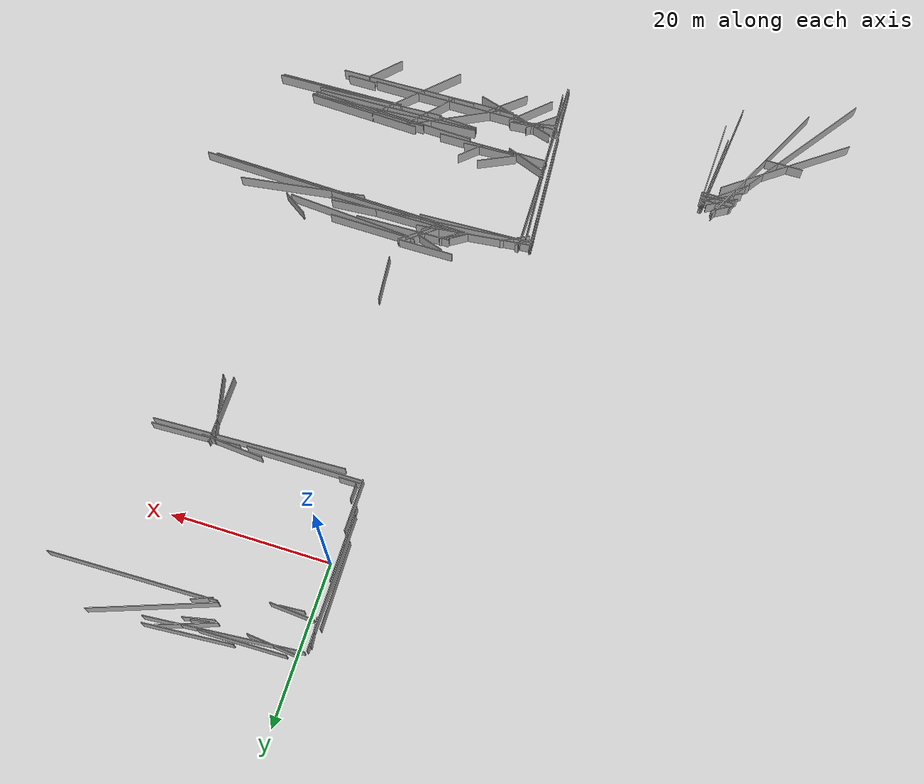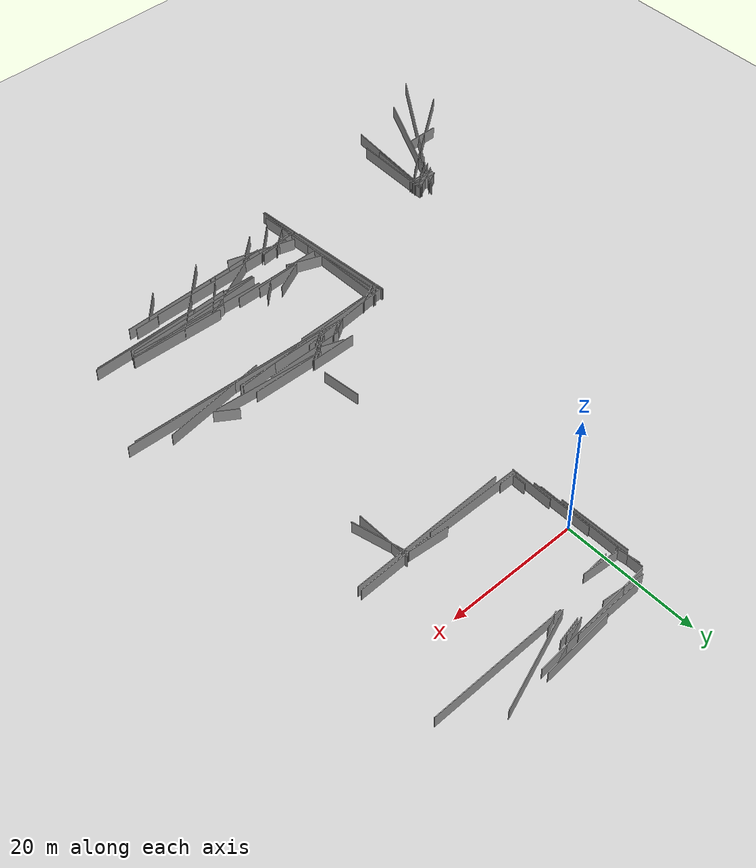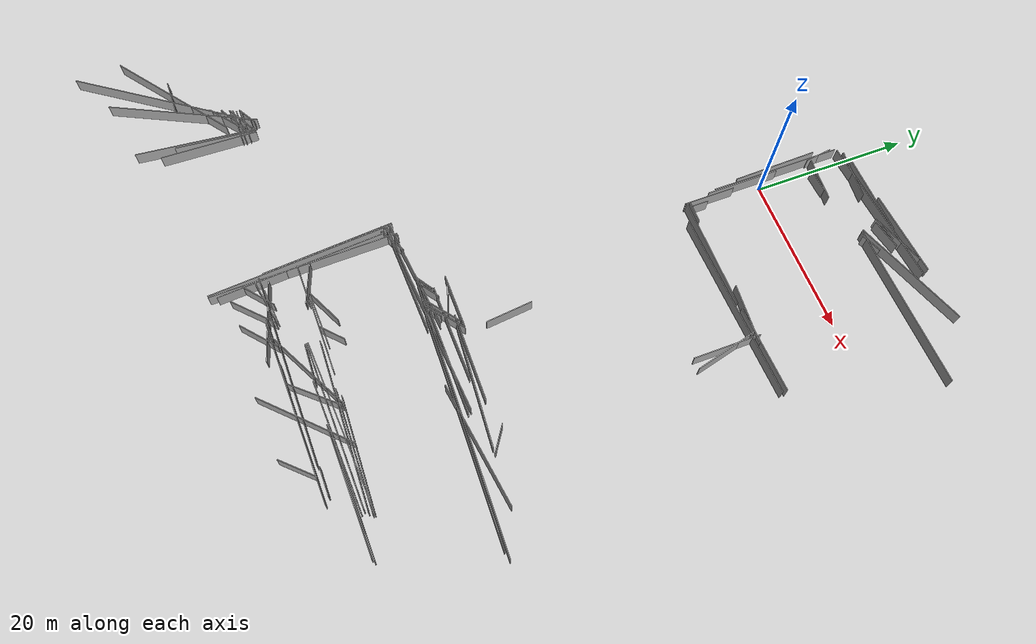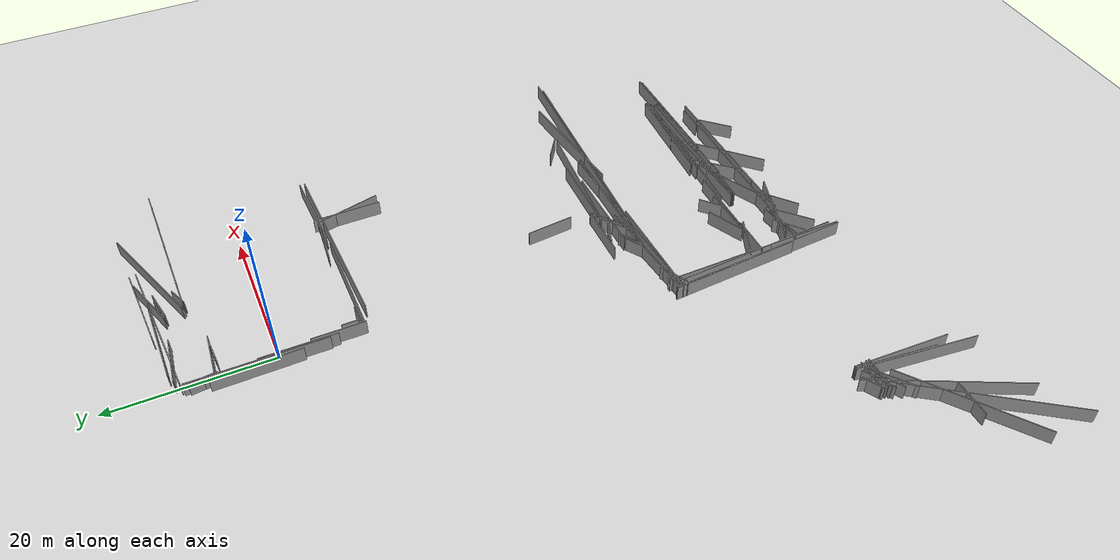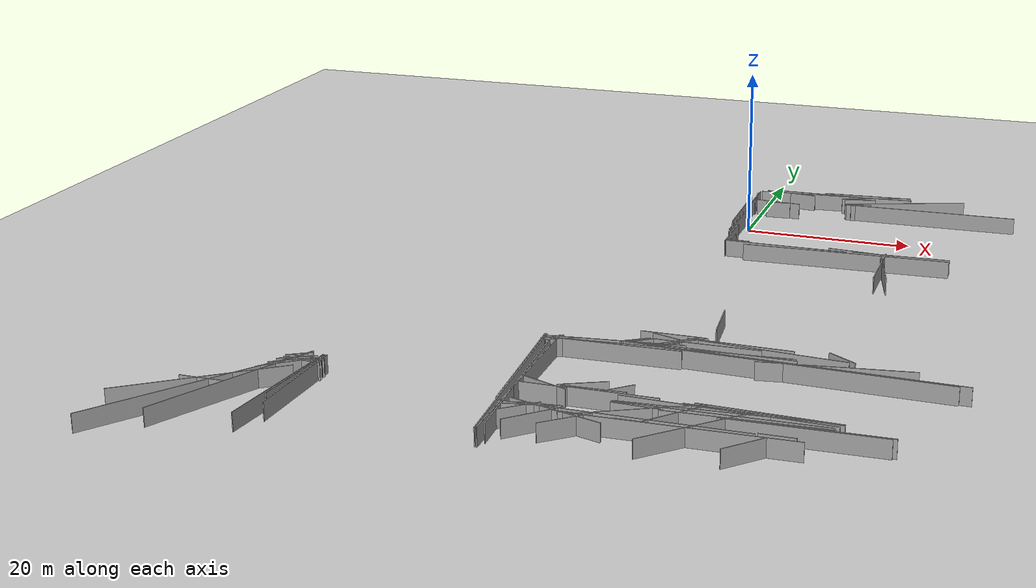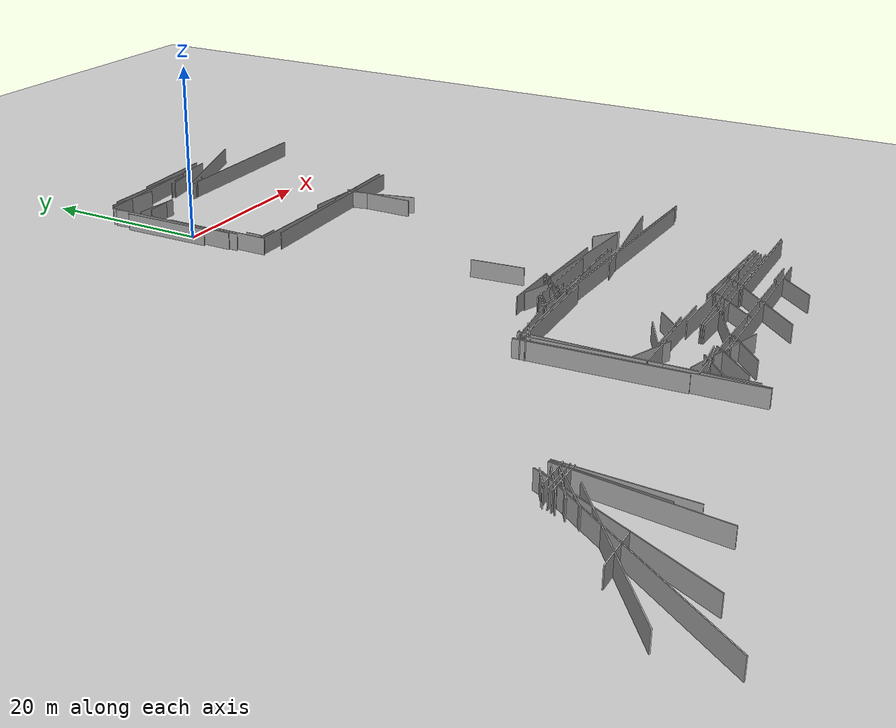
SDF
<sdf version="1.6">
 <world name="slam_world">
  <model name="ground_plane">
   <static>true</static>
   <link name="link">
    <collision name="collision">
     <geometry><plane><normal>0 0 1</normal><size>100 100</size></plane></geometry>
    </collision>
    <visual name="visual">
     <geometry><plane><normal>0 0 1</normal><size>100 100</size></plane></geometry>
     <material>
      <ambient>0.8 0.8 0.8 1</ambient>
      <diffuse>0.8 0.8 0.8 1</diffuse>
      <specular>0.8 0.8 0.8 1</specular>
     </material>
    </visual>
   </link>
  </model>
  <model name="wall_3">
   <static>true</static>
   <pose>10.100000000000001 -62.800000000000004 1.0 0 0 0.7853981633974483</pose>
   <link name="link">
    <collision name="collision">
     <geometry><box><size>13.010764773832479 0.1 2.0</size></box></geometry>
    </collision>
    <visual name="visual">
     <geometry><box><size>13.010764773832479 0.1 2.0</size></box></geometry>
     <material><ambient>0.5 0.5 0.5 1</ambient><diffuse>0.7 0.7 0.7 1</diffuse></material>
    </visual>
   </link>
  </model>
  <model name="wall_26">
   <static>true</static>
   <pose>9.300000000000004 -42.49999999999999 1.0 0 0 -0.017855245139552764</pose>
   <link name="link">
    <collision name="collision"><geometry><box><size>11.20178557195236 0.1 2.0</size></box></geometry></collision>
    <visual name="visual">
     <geometry><box><size>11.20178557195236 0.1 2.0</size></box></geometry>
     <material><ambient>0.5 0.5 0.5 1</ambient><diffuse>0.7 0.7 0.7 1</diffuse></material>
    </visual>
   </link>
  </model>
  <model name="wall_41">
   <static>true</static>
   <pose>3.3000000000000007 -63.0 1.0 0 0 0.0</pose>
   <link name="link">
    <collision name="collision">
     <geometry><box><size>24.800000000000004 0.1 2.0</size></box></geometry>
    </collision>
    <visual name="visual">
     <geometry><box><size>24.800000000000004 0.1 2.0</size></box></geometry>
     <material><ambient>0.5 0.5 0.5 1</ambient><diffuse>0.7 0.7 0.7 1</diffuse></material>
    </visual>
   </link>
  </model>
  <model name="wall_48">
   <static>true</static>
   <pose>7.5000000000000036 -60.9 1.0 0 0 0.8441539861131697</pose>
   <link name="link">
    <collision name="collision"><geometry><box><size>7.224956747275374 0.1 2.0</size></box></geometry></collision>
    <visual name="visual">
     <geometry><box><size>7.224956747275374 0.1 2.0</size></box></geometry>
     <material><ambient>0.5 0.5 0.5 1</ambient><diffuse>0.7 0.7 0.7 1</diffuse></material>
    </visual>
   </link>
  </model>
  <model name="wall_59">
   <static>true</static>
   <pose>15.900000000000006 -58.3 1.0 0 0 -0.04164257909858801</pose>
   <link name="link">
    <collision name="collision">
     <geometry><box><size>14.412494579357181 0.1 2.0</size></box></geometry>
    </collision>
    <visual name="visual">
     <geometry><box><size>14.412494579357181 0.1 2.0</size></box></geometry>
     <material><ambient>0.5 0.5 0.5 1</ambient><diffuse>0.7 0.7 0.7 1</diffuse></material>
    </visual>
   </link>
  </model>
  <model name="wall_60">
   <static>true</static>
   <pose>8.7 -63.599999999999994 1.0 0 0 0.017239671194529942</pose>
   <link name="link">
    <collision name="collision">
     <geometry><box><size>23.203448019637076 0.1 2.0</size></box></geometry>
    </collision>
    <visual name="visual">
     <geometry><box><size>23.203448019637076 0.1 2.0</size></box></geometry>
     <material><ambient>0.5 0.5 0.5 1</ambient><diffuse>0.7 0.7 0.7 1</diffuse></material>
    </visual>
   </link>
  </model>
  <model name="wall_64">
   <static>true</static>
   <pose>12.600000000000001 13.0 1.0 0 0 0.07259945373049556</pose>
   <link name="link">
    <collision name="collision">
     <geometry><box><size>11.029052543169804 0.1 2.0</size></box></geometry>
    </collision>
    <visual name="visual">
     <geometry><box><size>11.029052543169804 0.1 2.0</size></box></geometry>
     <material><ambient>0.5 0.5 0.5 1</ambient><diffuse>0.7 0.7 0.7 1</diffuse></material>
    </visual>
   </link>
  </model>
  <model name="wall_74">
   <static>true</static>
   <pose>6.799999999999997 -10.199999999999989 1.0 0 0 0.0</pose>
   <link name="link">
    <collision name="collision">
     <geometry><box><size>14.599999999999994 0.1 2.0</size></box></geometry>
    </collision>
    <visual name="visual">
     <geometry><box><size>14.599999999999994 0.1 2.0</size></box></geometry>
     <material><ambient>0.5 0.5 0.5 1</ambient><diffuse>0.7 0.7 0.7 1</diffuse></material>
    </visual>
   </link>
  </model>
  <model name="wall_77">
   <static>true</static>
   <pose>12.8 -43.199999999999996 1.0 0 0 -0.07580383736113942</pose>
   <link name="link">
    <collision name="collision">
     <geometry><box><size>15.845504094221809 0.1 2.0</size></box></geometry>
    </collision>
    <visual name="visual">
     <geometry><box><size>15.845504094221809 0.1 2.0</size></box></geometry>
     <material><ambient>0.5 0.5 0.5 1</ambient><diffuse>0.7 0.7 0.7 1</diffuse></material>
    </visual>
   </link>
  </model>
  <model name="wall_79">
   <static>true</static>
   <pose>-8.900000000000002 -57.4 1.0 0 0 -1.554131203080956</pose>
   <link name="link">
    <collision name="collision"><geometry><box><size>24.00333310188401 0.1 2.0</size></box></geometry></collision>
    <visual name="visual">
     <geometry><box><size>24.00333310188401 0.1 2.0</size></box></geometry>
     <material><ambient>0.5 0.5 0.5 1</ambient><diffuse>0.7 0.7 0.7 1</diffuse></material>
    </visual>
   </link>
  </model>
  <model name="wall_110">
   <static>true</static>
   <pose>12.0 -58.8 1.0 0 0 -0.03736577780278385</pose>
   <link name="link">
    <collision name="collision">
     <geometry><box><size>21.414948050368935 0.1 2.0</size></box></geometry>
    </collision>
    <visual name="visual">
     <geometry><box><size>21.414948050368935 0.1 2.0</size></box></geometry>
     <material><ambient>0.5 0.5 0.5 1</ambient><diffuse>0.7 0.7 0.7 1</diffuse></material>
    </visual>
   </link>
  </model>
  <model name="wall_128">
   <static>true</static>
   <pose>-31.5 -59.8 1.0 0 0 0.0</pose>
   <link name="link">
    <collision name="collision"><geometry><box><size>4.400000000000002 0.1 2.0</size></box></geometry></collision>
    <visual name="visual">
     <geometry><box><size>4.400000000000002 0.1 2.0</size></box></geometry>
     <material><ambient>0.5 0.5 0.5 1</ambient><diffuse>0.7 0.7 0.7 1</diffuse></material>
    </visual>
   </link>
  </model>
  <model name="wall_130">
   <static>true</static>
   <pose>11.7 -59.8 1.0 0 0 0.01886568602167106</pose>
   <link name="link">
    <collision name="collision"><geometry><box><size>21.20377324911771 0.1 2.0</size></box></geometry></collision>
    <visual name="visual">
     <geometry><box><size>21.20377324911771 0.1 2.0</size></box></geometry>
     <material><ambient>0.5 0.5 0.5 1</ambient><diffuse>0.7 0.7 0.7 1</diffuse></material>
    </visual>
   </link>
  </model>
  <model name="wall_131">
   <static>true</static>
   <pose>-31.4 -59.39999999999999 1.0 0 0 0.0</pose>
   <link name="link">
    <collision name="collision"><geometry><box><size>4.199999999999999 0.1 2.0</size></box></geometry></collision>
    <visual name="visual">
     <geometry><box><size>4.199999999999999 0.1 2.0</size></box></geometry>
     <material><ambient>0.5 0.5 0.5 1</ambient><diffuse>0.7 0.7 0.7 1</diffuse></material>
    </visual>
   </link>
  </model>
  <model name="wall_152">
   <static>true</static>
   <pose>5.600000000000001 -43.49999999999999 1.0 0 0 0.016391974308005496</pose>
   <link name="link">
    <collision name="collision">
     <geometry><box><size>12.201639234135717 0.1 2.0</size></box></geometry>
    </collision>
    <visual name="visual">
     <geometry><box><size>12.201639234135717 0.1 2.0</size></box></geometry>
     <material><ambient>0.5 0.5 0.5 1</ambient><diffuse>0.7 0.7 0.7 1</diffuse></material>
    </visual>
   </link>
  </model>
  <model name="wall_156">
   <static>true</static>
   <pose>2.3999999999999986 -45.49999999999999 1.0 0 0 0.06859450345427447</pose>
   <link name="link">
    <collision name="collision">
     <geometry><box><size>26.261759270848557 0.1 2.0</size></box></geometry>
    </collision>
    <visual name="visual">
     <geometry><box><size>26.261759270848557 0.1 2.0</size></box></geometry>
     <material><ambient>0.5 0.5 0.5 1</ambient><diffuse>0.7 0.7 0.7 1</diffuse></material>
    </visual>
   </link>
  </model>
  <model name="wall_175">
   <static>true</static>
   <pose>14.000000000000004 -10.599999999999994 1.0 0 0 0.03304581701893041</pose>
   <link name="link">
    <collision name="collision"><geometry><box><size>24.21321952983536 0.1 2.0</size></box></geometry></collision>
    <visual name="visual">
     <geometry><box><size>24.21321952983536 0.1 2.0</size></box></geometry>
     <material><ambient>0.5 0.5 0.5 1</ambient><diffuse>0.7 0.7 0.7 1</diffuse></material>
    </visual>
   </link>
  </model>
  <model name="wall_178">
   <static>true</static>
   <pose>-32.2 -60.49999999999999 1.0 0 0 0.6610431688506867</pose>
   <link name="link">
    <collision name="collision"><geometry><box><size>6.841052550594834 0.1 2.0</size></box></geometry></collision>
    <visual name="visual">
     <geometry><box><size>6.841052550594834 0.1 2.0</size></box></geometry>
     <material><ambient>0.5 0.5 0.5 1</ambient><diffuse>0.7 0.7 0.7 1</diffuse></material>
    </visual>
   </link>
  </model>
  <model name="wall_188">
   <static>true</static>
   <pose>15.500000000000004 -45.79999999999999 1.0 0 0 -0.03407771158700785</pose>
   <link name="link">
    <collision name="collision"><geometry><box><size>35.22044860588804 0.1 2.0</size></box></geometry></collision>
    <visual name="visual">
     <geometry><box><size>35.22044860588804 0.1 2.0</size></box></geometry>
     <material><ambient>0.5 0.5 0.5 1</ambient><diffuse>0.7 0.7 0.7 1</diffuse></material>
    </visual>
   </link>
  </model>
  <model name="wall_191">
   <static>true</static>
   <pose>19.700000000000003 -60.3 1.0 0 0 0.011904199558309144</pose>
   <link name="link">
    <collision name="collision">
     <geometry><box><size>16.801190434013908 0.1 2.0</size></box></geometry>
    </collision>
    <visual name="visual">
     <geometry><box><size>16.801190434013908 0.1 2.0</size></box></geometry>
     <material><ambient>0.5 0.5 0.5 1</ambient><diffuse>0.7 0.7 0.7 1</diffuse></material>
    </visual>
   </link>
  </model>
  <model name="wall_241">
   <static>true</static>
   <pose>-9.700000000000003 -46.199999999999996 1.0 0 0 0.6747409422235553</pose>
   <link name="link">
    <collision name="collision"><geometry><box><size>2.561249694973145 0.1 2.0</size></box></geometry></collision>
    <visual name="visual">
     <geometry><box><size>2.561249694973145 0.1 2.0</size></box></geometry>
     <material><ambient>0.5 0.5 0.5 1</ambient><diffuse>0.7 0.7 0.7 1</diffuse></material>
    </visual>
   </link>
  </model>
  <model name="wall_256">
   <static>true</static>
   <pose>17.000000000000004 -46.099999999999994 1.0 0 0 -0.033544459561678404</pose>
   <link name="link">
    <collision name="collision">
     <geometry><box><size>29.816773802676913 0.1 2.0</size></box></geometry>
    </collision>
    <visual name="visual">
     <geometry><box><size>29.816773802676913 0.1 2.0</size></box></geometry>
     <material><ambient>0.5 0.5 0.5 1</ambient><diffuse>0.7 0.7 0.7 1</diffuse></material>
    </visual>
   </link>
  </model>
  <model name="wall_266">
   <static>true</static>
   <pose>-0.8999999999999986 -2.299999999999997 1.0 0 0 1.5707963267948966</pose>
   <link name="link">
    <collision name="collision"><geometry><box><size>9.400000000000006 0.1 2.0</size></box></geometry></collision>
    <visual name="visual">
     <geometry><box><size>9.400000000000006 0.1 2.0</size></box></geometry>
     <material><ambient>0.5 0.5 0.5 1</ambient><diffuse>0.7 0.7 0.7 1</diffuse></material>
    </visual>
   </link>
  </model>
  <model name="wall_272">
   <static>true</static>
   <pose>-35.6 -66.0 1.0 0 0 1.116280884013501</pose>
   <link name="link">
    <collision name="collision"><geometry><box><size>19.5887722943527 0.1 2.0</size></box></geometry></collision>
    <visual name="visual">
     <geometry><box><size>19.5887722943527 0.1 2.0</size></box></geometry>
     <material><ambient>0.5 0.5 0.5 1</ambient><diffuse>0.7 0.7 0.7 1</diffuse></material>
    </visual>
   </link>
  </model>
  <model name="wall_275">
   <static>true</static>
   <pose>-9.7 -57.5 1.0 0 0 -1.503670438592796</pose>
   <link name="link">
    <collision name="collision">
     <geometry><box><size>23.853720883753137 0.1 2.0</size></box></geometry>
    </collision>
    <visual name="visual">
     <geometry><box><size>23.853720883753137 0.1 2.0</size></box></geometry>
     <material><ambient>0.5 0.5 0.5 1</ambient><diffuse>0.7 0.7 0.7 1</diffuse></material>
    </visual>
   </link>
  </model>
  <model name="wall_284">
   <static>true</static>
   <pose>8.7 11.799999999999997 1.0 0 0 0.08314123188844096</pose>
   <link name="link">
    <collision name="collision">
     <geometry><box><size>19.266551326067667 0.1 2.0</size></box></geometry>
    </collision>
    <visual name="visual">
     <geometry><box><size>19.266551326067667 0.1 2.0</size></box></geometry>
     <material><ambient>0.5 0.5 0.5 1</ambient><diffuse>0.7 0.7 0.7 1</diffuse></material>
    </visual>
   </link>
  </model>
  <model name="wall_298">
   <static>true</static>
   <pose>14.200000000000003 -60.3 1.0 0 0 0.03612885051277521</pose>
   <link name="link">
    <collision name="collision">
     <geometry><box><size>16.610839834276888 0.1 2.0</size></box></geometry>
    </collision>
    <visual name="visual">
     <geometry><box><size>16.610839834276888 0.1 2.0</size></box></geometry>
     <material><ambient>0.5 0.5 0.5 1</ambient><diffuse>0.7 0.7 0.7 1</diffuse></material>
    </visual>
   </link>
  </model>
  <model name="wall_323">
   <static>true</static>
   <pose>-1.6000000000000014 2.6000000000000014 1.0 0 0 -1.5522799247268873</pose>
   <link name="link">
    <collision name="collision">
     <geometry><box><size>10.801851693112619 0.1 2.0</size></box></geometry>
    </collision>
    <visual name="visual">
     <geometry><box><size>10.801851693112619 0.1 2.0</size></box></geometry>
     <material><ambient>0.5 0.5 0.5 1</ambient><diffuse>0.7 0.7 0.7 1</diffuse></material>
    </visual>
   </link>
  </model>
  <model name="wall_359">
   <static>true</static>
   <pose>-6.0 -63.099999999999994 1.0 0 0 0.18311081726248393</pose>
   <link name="link">
    <collision name="collision"><geometry><box><size>5.491812087098398 0.1 2.0</size></box></geometry></collision>
    <visual name="visual">
     <geometry><box><size>5.491812087098398 0.1 2.0</size></box></geometry>
     <material><ambient>0.5 0.5 0.5 1</ambient><diffuse>0.7 0.7 0.7 1</diffuse></material>
    </visual>
   </link>
  </model>
  <model name="wall_374">
   <static>true</static>
   <pose>20.500000000000007 -9.799999999999997 1.0 0 0 0.03569911267932447</pose>
   <link name="link">
    <collision name="collision">
     <geometry><box><size>11.207140580897523 0.1 2.0</size></box></geometry>
    </collision>
    <visual name="visual">
     <geometry><box><size>11.207140580897523 0.1 2.0</size></box></geometry>
     <material><ambient>0.5 0.5 0.5 1</ambient><diffuse>0.7 0.7 0.7 1</diffuse></material>
    </visual>
   </link>
  </model>
  <model name="wall_391">
   <static>true</static>
   <pose>15.400000000000006 -58.599999999999994 1.0 0 0 -0.025968187211556748</pose>
   <link name="link">
    <collision name="collision">
     <geometry><box><size>15.405193929321376 0.1 2.0</size></box></geometry>
    </collision>
    <visual name="visual">
     <geometry><box><size>15.405193929321376 0.1 2.0</size></box></geometry>
     <material><ambient>0.5 0.5 0.5 1</ambient><diffuse>0.7 0.7 0.7 1</diffuse></material>
    </visual>
   </link>
  </model>
  <model name="wall_404">
   <static>true</static>
   <pose>-10.100000000000001 -53.99999999999999 1.0 0 0 -1.499488862009606</pose>
   <link name="link">
    <collision name="collision">
     <geometry><box><size>16.842802617141835 0.1 2.0</size></box></geometry>
    </collision>
    <visual name="visual">
     <geometry><box><size>16.842802617141835 0.1 2.0</size></box></geometry>
     <material><ambient>0.5 0.5 0.5 1</ambient><diffuse>0.7 0.7 0.7 1</diffuse></material>
    </visual>
   </link>
  </model>
  <model name="wall_418">
   <static>true</static>
   <pose>-2.8999999999999986 -46.199999999999996 1.0 0 0 0.028563657838759388</pose>
   <link name="link">
    <collision name="collision">
     <geometry><box><size>14.005713120009277 0.1 2.0</size></box></geometry>
    </collision>
    <visual name="visual">
     <geometry><box><size>14.005713120009277 0.1 2.0</size></box></geometry>
     <material><ambient>0.5 0.5 0.5 1</ambient><diffuse>0.7 0.7 0.7 1</diffuse></material>
    </visual>
   </link>
  </model>
  <model name="wall_450">
   <static>true</static>
   <pose>4.200000000000003 -63.599999999999994 1.0 0 0 0.0</pose>
   <link name="link">
    <collision name="collision">
     <geometry><box><size>3.4000000000000057 0.1 2.0</size></box></geometry>
    </collision>
    <visual name="visual">
     <geometry><box><size>3.4000000000000057 0.1 2.0</size></box></geometry>
     <material><ambient>0.5 0.5 0.5 1</ambient><diffuse>0.7 0.7 0.7 1</diffuse></material>
    </visual>
   </link>
  </model>
  <model name="wall_453">
   <static>true</static>
   <pose>3.599999999999998 -60.3 1.0 0 0 -0.03997868712328783</pose>
   <link name="link">
    <collision name="collision">
     <geometry><box><size>5.0039984012787135 0.1 2.0</size></box></geometry>
    </collision>
    <visual name="visual">
     <geometry><box><size>5.0039984012787135 0.1 2.0</size></box></geometry>
     <material><ambient>0.5 0.5 0.5 1</ambient><diffuse>0.7 0.7 0.7 1</diffuse></material>
    </visual>
   </link>
  </model>
  <model name="wall_454">
   <static>true</static>
   <pose>4.199999999999999 -60.9 1.0 0 0 0.4711662643131093</pose>
   <link name="link">
    <collision name="collision">
     <geometry><box><size>11.896217886370438 0.1 2.0</size></box></geometry>
    </collision>
    <visual name="visual">
     <geometry><box><size>11.896217886370438 0.1 2.0</size></box></geometry>
     <material><ambient>0.5 0.5 0.5 1</ambient><diffuse>0.7 0.7 0.7 1</diffuse></material>
    </visual>
   </link>
  </model>
  <model name="wall_455">
   <static>true</static>
   <pose>12.0 11.0 1.0 0 0 0.20749622643520493</pose>
   <link name="link">
    <collision name="collision">
     <geometry><box><size>3.8832975677895334 0.1 2.0</size></box></geometry>
    </collision>
    <visual name="visual">
     <geometry><box><size>3.8832975677895334 0.1 2.0</size></box></geometry>
     <material><ambient>0.5 0.5 0.5 1</ambient><diffuse>0.7 0.7 0.7 1</diffuse></material>
    </visual>
   </link>
  </model>
  <model name="wall_456">
   <static>true</static>
   <pose>13.100000000000001 12.000000000000014 1.0 0 0 0.33929261445404557</pose>
   <link name="link">
    <collision name="collision"><geometry><box><size>7.211102550927977 0.1 2.0</size></box></geometry></collision>
    <visual name="visual">
     <geometry><box><size>7.211102550927977 0.1 2.0</size></box></geometry>
     <material><ambient>0.5 0.5 0.5 1</ambient><diffuse>0.7 0.7 0.7 1</diffuse></material>
    </visual>
   </link>
  </model>
  <model name="wall_460">
   <static>true</static>
   <pose>-30.200000000000003 -62.99999999999999 1.0 0 0 1.4749371796848834</pose>
   <link name="link">
    <collision name="collision">
     <geometry><box><size>10.447966309287173 0.1 2.0</size></box></geometry>
    </collision>
    <visual name="visual">
     <geometry><box><size>10.447966309287173 0.1 2.0</size></box></geometry>
     <material><ambient>0.5 0.5 0.5 1</ambient><diffuse>0.7 0.7 0.7 1</diffuse></material>
    </visual>
   </link>
  </model>
  <model name="wall_479">
   <static>true</static>
   <pose>-29.700000000000003 -63.99999999999999 1.0 0 0 1.5385494443596426</pose>
   <link name="link">
    <collision name="collision"><geometry><box><size>12.40644993541665 0.1 2.0</size></box></geometry></collision>
    <visual name="visual">
     <geometry><box><size>12.40644993541665 0.1 2.0</size></box></geometry>
     <material><ambient>0.5 0.5 0.5 1</ambient><diffuse>0.7 0.7 0.7 1</diffuse></material>
    </visual>
   </link>
  </model>
  <model name="wall_487">
   <static>true</static>
   <pose>-1.1000000000000014 2.4000000000000057 1.0 0 0 1.5707963267948966</pose>
   <link name="link">
    <collision name="collision"><geometry><box><size>16.80000000000001 0.1 2.0</size></box></geometry></collision>
    <visual name="visual">
     <geometry><box><size>16.80000000000001 0.1 2.0</size></box></geometry>
     <material><ambient>0.5 0.5 0.5 1</ambient><diffuse>0.7 0.7 0.7 1</diffuse></material>
    </visual>
   </link>
  </model>
  <model name="wall_488">
   <static>true</static>
   <pose>0.8999999999999986 -9.799999999999997 1.0 0 0 0.0</pose>
   <link name="link">
    <collision name="collision"><geometry><box><size>2.799999999999997 0.1 2.0</size></box></geometry></collision>
    <visual name="visual">
     <geometry><box><size>2.799999999999997 0.1 2.0</size></box></geometry>
     <material><ambient>0.5 0.5 0.5 1</ambient><diffuse>0.7 0.7 0.7 1</diffuse></material>
    </visual>
   </link>
  </model>
  <model name="wall_529">
   <static>true</static>
   <pose>-30.700000000000003 -65.5 1.0 0 0 1.4672716522843523</pose>
   <link name="link">
    <collision name="collision">
     <geometry><box><size>15.482893786369516 0.1 2.0</size></box></geometry>
    </collision>
    <visual name="visual">
     <geometry><box><size>15.482893786369516 0.1 2.0</size></box></geometry>
     <material><ambient>0.5 0.5 0.5 1</ambient><diffuse>0.7 0.7 0.7 1</diffuse></material>
    </visual>
   </link>
  </model>
  <model name="wall_533">
   <static>true</static>
   <pose>2.099999999999998 7.000000000000014 1.0 0 0 -0.07130746478529132</pose>
   <link name="link">
    <collision name="collision"><geometry><box><size>5.614267539047281 0.1 2.0</size></box></geometry></collision>
    <visual name="visual">
     <geometry><box><size>5.614267539047281 0.1 2.0</size></box></geometry>
     <material><ambient>0.5 0.5 0.5 1</ambient><diffuse>0.7 0.7 0.7 1</diffuse></material>
    </visual>
   </link>
  </model>
  <model name="wall_538">
   <static>true</static>
   <pose>18.700000000000003 -13.699999999999996 1.0 0 0 1.5707963267948966</pose>
   <link name="link">
    <collision name="collision"><geometry><box><size>8.600000000000009 0.1 2.0</size></box></geometry></collision>
    <visual name="visual">
     <geometry><box><size>8.600000000000009 0.1 2.0</size></box></geometry>
     <material><ambient>0.5 0.5 0.5 1</ambient><diffuse>0.7 0.7 0.7 1</diffuse></material>
    </visual>
   </link>
  </model>
  <model name="wall_546">
   <static>true</static>
   <pose>-3.3000000000000007 -45.199999999999996 1.0 0 0 0.10768987083282122</pose>
   <link name="link">
    <collision name="collision">
     <geometry><box><size>14.886235252742722 0.1 2.0</size></box></geometry>
    </collision>
    <visual name="visual">
     <geometry><box><size>14.886235252742722 0.1 2.0</size></box></geometry>
     <material><ambient>0.5 0.5 0.5 1</ambient><diffuse>0.7 0.7 0.7 1</diffuse></material>
    </visual>
   </link>
  </model>
  <model name="wall_554">
   <static>true</static>
   <pose>-6.5 -57.599999999999994 1.0 0 0 -0.367173833818219</pose>
   <link name="link">
    <collision name="collision"><geometry><box><size>5.571355310873651 0.1 2.0</size></box></geometry></collision>
    <visual name="visual">
     <geometry><box><size>5.571355310873651 0.1 2.0</size></box></geometry>
     <material><ambient>0.5 0.5 0.5 1</ambient><diffuse>0.7 0.7 0.7 1</diffuse></material>
    </visual>
   </link>
  </model>
  <model name="wall_598">
   <static>true</static>
   <pose>7.400000000000002 -45.0 1.0 0 0 0.0</pose>
   <link name="link">
    <collision name="collision"><geometry><box><size>16.6 0.1 2.0</size></box></geometry></collision>
    <visual name="visual">
     <geometry><box><size>16.6 0.1 2.0</size></box></geometry>
     <material><ambient>0.5 0.5 0.5 1</ambient><diffuse>0.7 0.7 0.7 1</diffuse></material>
    </visual>
   </link>
  </model>
  <model name="wall_601">
   <static>true</static>
   <pose>-38.7 -66.6 1.0 0 0 0.643501108793284</pose>
   <link name="link">
    <collision name="collision">
     <geometry><box><size>18.000000000000004 0.1 2.0</size></box></geometry>
    </collision>
    <visual name="visual">
     <geometry><box><size>18.000000000000004 0.1 2.0</size></box></geometry>
     <material><ambient>0.5 0.5 0.5 1</ambient><diffuse>0.7 0.7 0.7 1</diffuse></material>
    </visual>
   </link>
  </model>
  <model name="wall_607">
   <static>true</static>
   <pose>-5.099999999999998 -62.599999999999994 1.0 0 0 0.09065988720074643</pose>
   <link name="link">
    <collision name="collision"><geometry><box><size>4.418144406874903 0.1 2.0</size></box></geometry></collision>
    <visual name="visual">
     <geometry><box><size>4.418144406874903 0.1 2.0</size></box></geometry>
     <material><ambient>0.5 0.5 0.5 1</ambient><diffuse>0.7 0.7 0.7 1</diffuse></material>
    </visual>
   </link>
  </model>
  <model name="wall_620">
   <static>true</static>
   <pose>-2.8000000000000007 -56.699999999999996 1.0 0 0 0.44610554894340404</pose>
   <link name="link">
    <collision name="collision"><geometry><box><size>5.099019513592788 0.1 2.0</size></box></geometry></collision>
    <visual name="visual">
     <geometry><box><size>5.099019513592788 0.1 2.0</size></box></geometry>
     <material><ambient>0.5 0.5 0.5 1</ambient><diffuse>0.7 0.7 0.7 1</diffuse></material>
    </visual>
   </link>
  </model>
  <model name="wall_634">
   <static>true</static>
   <pose>19.10000000000001 -13.899999999999999 1.0 0 0 -1.331564726831236</pose>
   <link name="link">
    <collision name="collision"><geometry><box><size>8.44037913840368 0.1 2.0</size></box></geometry></collision>
    <visual name="visual">
     <geometry><box><size>8.44037913840368 0.1 2.0</size></box></geometry>
     <material><ambient>0.5 0.5 0.5 1</ambient><diffuse>0.7 0.7 0.7 1</diffuse></material>
    </visual>
   </link>
  </model>
  <model name="wall_640">
   <static>true</static>
   <pose>-31.299999999999997 -58.8 1.0 0 0 0.0</pose>
   <link name="link">
    <collision name="collision">
     <geometry><box><size>3.9999999999999964 0.1 2.0</size></box></geometry>
    </collision>
    <visual name="visual">
     <geometry><box><size>3.9999999999999964 0.1 2.0</size></box></geometry>
     <material><ambient>0.5 0.5 0.5 1</ambient><diffuse>0.7 0.7 0.7 1</diffuse></material>
    </visual>
   </link>
  </model>
  <model name="wall_641">
   <static>true</static>
   <pose>0.8000000000000007 -56.8 1.0 0 0 0.7454194762741592</pose>
   <link name="link">
    <collision name="collision">
     <geometry><box><size>3.5383612025908313 0.1 2.0</size></box></geometry>
    </collision>
    <visual name="visual">
     <geometry><box><size>3.5383612025908313 0.1 2.0</size></box></geometry>
     <material><ambient>0.5 0.5 0.5 1</ambient><diffuse>0.7 0.7 0.7 1</diffuse></material>
    </visual>
   </link>
  </model>
  <model name="wall_649">
   <static>true</static>
   <pose>-0.29999999999999716 -44.099999999999994 1.0 0 0 0.6107259643892106</pose>
   <link name="link">
    <collision name="collision">
     <geometry><box><size>2.4413111231467437 0.1 2.0</size></box></geometry>
    </collision>
    <visual name="visual">
     <geometry><box><size>2.4413111231467437 0.1 2.0</size></box></geometry>
     <material><ambient>0.5 0.5 0.5 1</ambient><diffuse>0.7 0.7 0.7 1</diffuse></material>
    </visual>
   </link>
  </model>
  <model name="wall_659">
   <static>true</static>
   <pose>5.600000000000001 -36.19999999999999 1.0 0 0 -1.4711276743037331</pose>
   <link name="link">
    <collision name="collision"><geometry><box><size>6.029925372672535 0.1 2.0</size></box></geometry></collision>
    <visual name="visual">
     <geometry><box><size>6.029925372672535 0.1 2.0</size></box></geometry>
     <material><ambient>0.5 0.5 0.5 1</ambient><diffuse>0.7 0.7 0.7 1</diffuse></material>
    </visual>
   </link>
  </model>
  <model name="wall_669">
   <static>true</static>
   <pose>21.200000000000003 8.600000000000009 1.0 0 0 0.019045315982016732</pose>
   <link name="link">
    <collision name="collision">
     <geometry><box><size>21.003809178337153 0.1 2.0</size></box></geometry>
    </collision>
    <visual name="visual">
     <geometry><box><size>21.003809178337153 0.1 2.0</size></box></geometry>
     <material><ambient>0.5 0.5 0.5 1</ambient><diffuse>0.7 0.7 0.7 1</diffuse></material>
    </visual>
   </link>
  </model>
  <model name="wall_708">
   <static>true</static>
   <pose>6.300000000000001 12.100000000000009 1.0 0 0 0.018516402068010616</pose>
   <link name="link">
    <collision name="collision">
     <geometry><box><size>10.801851693112626 0.1 2.0</size></box></geometry>
    </collision>
    <visual name="visual">
     <geometry><box><size>10.801851693112626 0.1 2.0</size></box></geometry>
     <material><ambient>0.5 0.5 0.5 1</ambient><diffuse>0.7 0.7 0.7 1</diffuse></material>
    </visual>
   </link>
  </model>
  <model name="wall_724">
   <static>true</static>
   <pose>3.3000000000000007 -43.599999999999994 1.0 0 0 0.6435011087932831</pose>
   <link name="link">
    <collision name="collision"><geometry><box><size>6.0 0.1 2.0</size></box></geometry></collision>
    <visual name="visual">
     <geometry><box><size>6.0 0.1 2.0</size></box></geometry>
     <material><ambient>0.5 0.5 0.5 1</ambient><diffuse>0.7 0.7 0.7 1</diffuse></material>
    </visual>
   </link>
  </model>
  <model name="wall_757">
   <static>true</static>
   <pose>2.0 -41.8 1.0 0 0 0.0</pose>
   <link name="link">
    <collision name="collision"><geometry><box><size>7.0 0.1 2.0</size></box></geometry></collision>
    <visual name="visual">
     <geometry><box><size>7.0 0.1 2.0</size></box></geometry>
     <material><ambient>0.5 0.5 0.5 1</ambient><diffuse>0.7 0.7 0.7 1</diffuse></material>
    </visual>
   </link>
  </model>
  <model name="wall_766">
   <static>true</static>
   <pose>-0.5 -7.099999999999994 1.0 0 0 1.5707963267948966</pose>
   <link name="link">
    <collision name="collision"><geometry><box><size>6.599999999999994 0.1 2.0</size></box></geometry></collision>
    <visual name="visual">
     <geometry><box><size>6.599999999999994 0.1 2.0</size></box></geometry>
     <material><ambient>0.5 0.5 0.5 1</ambient><diffuse>0.7 0.7 0.7 1</diffuse></material>
    </visual>
   </link>
  </model>
  <model name="wall_769">
   <static>true</static>
   <pose>-3.299999999999997 -63.5 1.0 0 0 -0.2914567944778671</pose>
   <link name="link">
    <collision name="collision"><geometry><box><size>10.44030650891055 0.1 2.0</size></box></geometry></collision>
    <visual name="visual">
     <geometry><box><size>10.44030650891055 0.1 2.0</size></box></geometry>
     <material><ambient>0.5 0.5 0.5 1</ambient><diffuse>0.7 0.7 0.7 1</diffuse></material>
    </visual>
   </link>
  </model>
  <model name="wall_774">
   <static>true</static>
   <pose>0.10000000000000142 -8.599999999999994 1.0 0 0 -1.5707963267948966</pose>
   <link name="link">
    <collision name="collision"><geometry><box><size>2.0 0.1 2.0</size></box></geometry></collision>
    <visual name="visual">
     <geometry><box><size>2.0 0.1 2.0</size></box></geometry>
     <material><ambient>0.5 0.5 0.5 1</ambient><diffuse>0.7 0.7 0.7 1</diffuse></material>
    </visual>
   </link>
  </model>
  <model name="wall_799">
   <static>true</static>
   <pose>17.700000000000003 11.200000000000003 1.0 0 0 0.3465388644339428</pose>
   <link name="link">
    <collision name="collision"><geometry><box><size>15.31012736720372 0.1 2.0</size></box></geometry></collision>
    <visual name="visual">
     <geometry><box><size>15.31012736720372 0.1 2.0</size></box></geometry>
     <material><ambient>0.5 0.5 0.5 1</ambient><diffuse>0.7 0.7 0.7 1</diffuse></material>
    </visual>
   </link>
  </model>
  <model name="wall_802">
   <static>true</static>
   <pose>19.6 -60.49999999999999 1.0 0 0 0.012345051844224662</pose>
   <link name="link">
    <collision name="collision"><geometry><box><size>16.20123452086291 0.1 2.0</size></box></geometry></collision>
    <visual name="visual">
     <geometry><box><size>16.20123452086291 0.1 2.0</size></box></geometry>
     <material><ambient>0.5 0.5 0.5 1</ambient><diffuse>0.7 0.7 0.7 1</diffuse></material>
    </visual>
   </link>
  </model>
  <model name="wall_816">
   <static>true</static>
   <pose>-6.900000000000002 -63.7 1.0 0 0 0.694738276196703</pose>
   <link name="link">
    <collision name="collision"><geometry><box><size>4.686149805543994 0.1 2.0</size></box></geometry></collision>
    <visual name="visual">
     <geometry><box><size>4.686149805543994 0.1 2.0</size></box></geometry>
     <material><ambient>0.5 0.5 0.5 1</ambient><diffuse>0.7 0.7 0.7 1</diffuse></material>
    </visual>
   </link>
  </model>
  <model name="wall_824">
   <static>true</static>
   <pose>15.800000000000004 -9.699999999999996 1.0 0 0 -0.07677189126977915</pose>
   <link name="link">
    <collision name="collision"><geometry><box><size>7.823042886243177 0.1 2.0</size></box></geometry></collision>
    <visual name="visual">
     <geometry><box><size>7.823042886243177 0.1 2.0</size></box></geometry>
     <material><ambient>0.5 0.5 0.5 1</ambient><diffuse>0.7 0.7 0.7 1</diffuse></material>
    </visual>
   </link>
  </model>
  <model name="wall_829">
   <static>true</static>
   <pose>-32.3 -58.3 1.0 0 0 0.5280744484263618</pose>
   <link name="link">
    <collision name="collision"><geometry><box><size>2.778488797889963 0.1 2.0</size></box></geometry></collision>
    <visual name="visual">
     <geometry><box><size>2.778488797889963 0.1 2.0</size></box></geometry>
     <material><ambient>0.5 0.5 0.5 1</ambient><diffuse>0.7 0.7 0.7 1</diffuse></material>
    </visual>
   </link>
  </model>
  <model name="wall_830">
   <static>true</static>
   <pose>17.700000000000003 -62.8 1.0 0 0 0.0</pose>
   <link name="link">
    <collision name="collision">
     <geometry><box><size>3.5999999999999943 0.1 2.0</size></box></geometry>
    </collision>
    <visual name="visual">
     <geometry><box><size>3.5999999999999943 0.1 2.0</size></box></geometry>
     <material><ambient>0.5 0.5 0.5 1</ambient><diffuse>0.7 0.7 0.7 1</diffuse></material>
    </visual>
   </link>
  </model>
  <model name="wall_833">
   <static>true</static>
   <pose>-1.0999999999999979 8.500000000000014 1.0 0 0 -1.4536875822280328</pose>
   <link name="link">
    <collision name="collision">
     <geometry><box><size>3.4234485537247434 0.1 2.0</size></box></geometry>
    </collision>
    <visual name="visual">
     <geometry><box><size>3.4234485537247434 0.1 2.0</size></box></geometry>
     <material><ambient>0.5 0.5 0.5 1</ambient><diffuse>0.7 0.7 0.7 1</diffuse></material>
    </visual>
   </link>
  </model>
  <model name="wall_840">
   <static>true</static>
   <pose>0.29999999999999716 -58.0 1.0 0 0 0.0</pose>
   <link name="link">
    <collision name="collision"><geometry><box><size>10.0 0.1 2.0</size></box></geometry></collision>
    <visual name="visual">
     <geometry><box><size>10.0 0.1 2.0</size></box></geometry>
     <material><ambient>0.5 0.5 0.5 1</ambient><diffuse>0.7 0.7 0.7 1</diffuse></material>
    </visual>
   </link>
  </model>
  <model name="wall_865">
   <static>true</static>
   <pose>-9.0 -57.5 1.0 0 0 -1.5066642117934648</pose>
   <link name="link">
    <collision name="collision"><geometry><box><size>21.84490787346105 0.1 2.0</size></box></geometry></collision>
    <visual name="visual">
     <geometry><box><size>21.84490787346105 0.1 2.0</size></box></geometry>
     <material><ambient>0.5 0.5 0.5 1</ambient><diffuse>0.7 0.7 0.7 1</diffuse></material>
    </visual>
   </link>
  </model>
  <model name="wall_887">
   <static>true</static>
   <pose>2.8999999999999986 11.299999999999997 1.0 0 0 -0.0934767811585887</pose>
   <link name="link">
    <collision name="collision"><geometry><box><size>6.42806347199527 0.1 2.0</size></box></geometry></collision>
    <visual name="visual">
     <geometry><box><size>6.42806347199527 0.1 2.0</size></box></geometry>
     <material><ambient>0.5 0.5 0.5 1</ambient><diffuse>0.7 0.7 0.7 1</diffuse></material>
    </visual>
   </link>
  </model>
  <model name="wall_935">
   <static>true</static>
   <pose>-32.1 -59.2 1.0 0 0 0.5070985043923364</pose>
   <link name="link">
    <collision name="collision"><geometry><box><size>4.118252056394804 0.1 2.0</size></box></geometry></collision>
    <visual name="visual">
     <geometry><box><size>4.118252056394804 0.1 2.0</size></box></geometry>
     <material><ambient>0.5 0.5 0.5 1</ambient><diffuse>0.7 0.7 0.7 1</diffuse></material>
    </visual>
   </link>
  </model>
  <model name="wall_936">
   <static>true</static>
   <pose>-1.8000000000000007 -65.0 1.0 0 0 0.7086262721276699</pose>
   <link name="link">
    <collision name="collision"><geometry><box><size>5.531726674375726 0.1 2.0</size></box></geometry></collision>
    <visual name="visual">
     <geometry><box><size>5.531726674375726 0.1 2.0</size></box></geometry>
     <material><ambient>0.5 0.5 0.5 1</ambient><diffuse>0.7 0.7 0.7 1</diffuse></material>
    </visual>
   </link>
  </model>
  <model name="wall_961">
   <static>true</static>
   <pose>-2.0 -63.599999999999994 1.0 0 0 0.0</pose>
   <link name="link">
    <collision name="collision"><geometry><box><size>3.0 0.1 2.0</size></box></geometry></collision>
    <visual name="visual">
     <geometry><box><size>3.0 0.1 2.0</size></box></geometry>
     <material><ambient>0.5 0.5 0.5 1</ambient><diffuse>0.7 0.7 0.7 1</diffuse></material>
    </visual>
   </link>
  </model>
  <model name="wall_967">
   <static>true</static>
   <pose>-38.5 -66.8 1.0 0 0 0.0</pose>
   <link name="link">
    <collision name="collision"><geometry><box><size>4.800000000000004 0.1 2.0</size></box></geometry></collision>
    <visual name="visual">
     <geometry><box><size>4.800000000000004 0.1 2.0</size></box></geometry>
     <material><ambient>0.5 0.5 0.5 1</ambient><diffuse>0.7 0.7 0.7 1</diffuse></material>
    </visual>
   </link>
  </model>
  <model name="wall_983">
   <static>true</static>
   <pose>11.900000000000002 -59.199999999999996 1.0 0 0 0.055498505245716964</pose>
   <link name="link">
    <collision name="collision">
     <geometry><box><size>21.633307652783937 0.1 2.0</size></box></geometry>
    </collision>
    <visual name="visual">
     <geometry><box><size>21.633307652783937 0.1 2.0</size></box></geometry>
     <material><ambient>0.5 0.5 0.5 1</ambient><diffuse>0.7 0.7 0.7 1</diffuse></material>
    </visual>
   </link>
  </model>
  <model name="wall_1001">
   <static>true</static>
   <pose>19.799999999999997 -42.8 1.0 0 0 -0.5880026035475675</pose>
   <link name="link">
    <collision name="collision"><geometry><box><size>3.605551275463989 0.1 2.0</size></box></geometry></collision>
    <visual name="visual">
     <geometry><box><size>3.605551275463989 0.1 2.0</size></box></geometry>
     <material><ambient>0.5 0.5 0.5 1</ambient><diffuse>0.7 0.7 0.7 1</diffuse></material>
    </visual>
   </link>
  </model>
  <model name="wall_1002">
   <static>true</static>
   <pose>2.299999999999997 -44.699999999999996 1.0 0 0 0.6107259643892058</pose>
   <link name="link">
    <collision name="collision">
     <geometry><box><size>2.4413111231467357 0.1 2.0</size></box></geometry>
    </collision>
    <visual name="visual">
     <geometry><box><size>2.4413111231467357 0.1 2.0</size></box></geometry>
     <material><ambient>0.5 0.5 0.5 1</ambient><diffuse>0.7 0.7 0.7 1</diffuse></material>
    </visual>
   </link>
  </model>
  <model name="wall_1012">
   <static>true</static>
   <pose>12.5 8.700000000000017 1.0 0 0 0.39479111969976066</pose>
   <link name="link">
    <collision name="collision">
     <geometry><box><size>2.6000000000000054 0.1 2.0</size></box></geometry>
    </collision>
    <visual name="visual">
     <geometry><box><size>2.6000000000000054 0.1 2.0</size></box></geometry>
     <material><ambient>0.5 0.5 0.5 1</ambient><diffuse>0.7 0.7 0.7 1</diffuse></material>
    </visual>
   </link>
  </model>
  <model name="wall_1039">
   <static>true</static>
   <pose>-32.4 -60.1 1.0 0 0 0.5247957716501082</pose>
   <link name="link">
    <collision name="collision"><geometry><box><size>4.390899680020029 0.1 2.0</size></box></geometry></collision>
    <visual name="visual">
     <geometry><box><size>4.390899680020029 0.1 2.0</size></box></geometry>
     <material><ambient>0.5 0.5 0.5 1</ambient><diffuse>0.7 0.7 0.7 1</diffuse></material>
    </visual>
   </link>
  </model>
  <model name="wall_1043">
   <static>true</static>
   <pose>19.700000000000003 -45.29999999999999 1.0 0 0 0.13664316249108727</pose>
   <link name="link">
    <collision name="collision">
     <geometry><box><size>16.150541786577936 0.1 2.0</size></box></geometry>
    </collision>
    <visual name="visual">
     <geometry><box><size>16.150541786577936 0.1 2.0</size></box></geometry>
     <material><ambient>0.5 0.5 0.5 1</ambient><diffuse>0.7 0.7 0.7 1</diffuse></material>
    </visual>
   </link>
  </model>
  <model name="wall_1051">
   <static>true</static>
   <pose>11.800000000000004 11.200000000000003 1.0 0 0 0.17985349979248055</pose>
   <link name="link">
    <collision name="collision">
     <geometry><box><size>2.2360679774997934 0.1 2.0</size></box></geometry>
    </collision>
    <visual name="visual">
     <geometry><box><size>2.2360679774997934 0.1 2.0</size></box></geometry>
     <material><ambient>0.5 0.5 0.5 1</ambient><diffuse>0.7 0.7 0.7 1</diffuse></material>
    </visual>
   </link>
  </model>
  <model name="wall_1095">
   <static>true</static>
   <pose>-6.5 -58.2 1.0 0 0 0.0</pose>
   <link name="link">
    <collision name="collision"><geometry><box><size>5.200000000000003 0.1 2.0</size></box></geometry></collision>
    <visual name="visual">
     <geometry><box><size>5.200000000000003 0.1 2.0</size></box></geometry>
     <material><ambient>0.5 0.5 0.5 1</ambient><diffuse>0.7 0.7 0.7 1</diffuse></material>
    </visual>
   </link>
  </model>
  <model name="wall_1100">
   <static>true</static>
   <pose>15.200000000000003 -65.19999999999999 1.0 0 0 0.8139618212362086</pose>
   <link name="link">
    <collision name="collision"><geometry><box><size>4.951767361255989 0.1 2.0</size></box></geometry></collision>
    <visual name="visual">
     <geometry><box><size>4.951767361255989 0.1 2.0</size></box></geometry>
     <material><ambient>0.5 0.5 0.5 1</ambient><diffuse>0.7 0.7 0.7 1</diffuse></material>
    </visual>
   </link>
  </model>
  <model name="wall_1106">
   <static>true</static>
   <pose>2.5 -43.699999999999996 1.0 0 0 0.6578886051822082</pose>
   <link name="link">
    <collision name="collision"><geometry><box><size>5.560575509783137 0.1 2.0</size></box></geometry></collision>
    <visual name="visual">
     <geometry><box><size>5.560575509783137 0.1 2.0</size></box></geometry>
     <material><ambient>0.5 0.5 0.5 1</ambient><diffuse>0.7 0.7 0.7 1</diffuse></material>
    </visual>
   </link>
  </model>
  <model name="wall_1119">
   <static>true</static>
   <pose>2.200000000000003 6.700000000000003 1.0 0 0 0.06656816377582947</pose>
   <link name="link">
    <collision name="collision">
     <geometry><box><size>3.0066592756745827 0.1 2.0</size></box></geometry>
    </collision>
    <visual name="visual">
     <geometry><box><size>3.0066592756745827 0.1 2.0</size></box></geometry>
     <material><ambient>0.5 0.5 0.5 1</ambient><diffuse>0.7 0.7 0.7 1</diffuse></material>
    </visual>
   </link>
  </model>
  <model name="wall_1122">
   <static>true</static>
   <pose>-8.400000000000002 -46.29999999999999 1.0 0 0 0.48689923181126854</pose>
   <link name="link">
    <collision name="collision">
     <geometry><box><size>3.8470768123342665 0.1 2.0</size></box></geometry>
    </collision>
    <visual name="visual">
     <geometry><box><size>3.8470768123342665 0.1 2.0</size></box></geometry>
     <material><ambient>0.5 0.5 0.5 1</ambient><diffuse>0.7 0.7 0.7 1</diffuse></material>
    </visual>
   </link>
  </model>
  <model name="wall_1123">
   <static>true</static>
   <pose>-1.4000000000000021 -57.699999999999996 1.0 0 0 0.030293759918775524</pose>
   <link name="link">
    <collision name="collision"><geometry><box><size>6.603029607687672 0.1 2.0</size></box></geometry></collision>
    <visual name="visual">
     <geometry><box><size>6.603029607687672 0.1 2.0</size></box></geometry>
     <material><ambient>0.5 0.5 0.5 1</ambient><diffuse>0.7 0.7 0.7 1</diffuse></material>
    </visual>
   </link>
  </model>
  <model name="wall_1124">
   <static>true</static>
   <pose>-5.0 -64.8 1.0 0 0 0.7631795980707305</pose>
   <link name="link">
    <collision name="collision">
     <geometry><box><size>6.3655321851358195 0.1 2.0</size></box></geometry>
    </collision>
    <visual name="visual">
     <geometry><box><size>6.3655321851358195 0.1 2.0</size></box></geometry>
     <material><ambient>0.5 0.5 0.5 1</ambient><diffuse>0.7 0.7 0.7 1</diffuse></material>
    </visual>
   </link>
  </model>
  <model name="wall_1132">
   <static>true</static>
   <pose>-38.5 -68.0 1.0 0 0 0.960070362405688</pose>
   <link name="link">
    <collision name="collision">
     <geometry><box><size>24.413111231467404 0.1 2.0</size></box></geometry>
    </collision>
    <visual name="visual">
     <geometry><box><size>24.413111231467404 0.1 2.0</size></box></geometry>
     <material><ambient>0.5 0.5 0.5 1</ambient><diffuse>0.7 0.7 0.7 1</diffuse></material>
    </visual>
   </link>
  </model>
  <model name="wall_1134">
   <static>true</static>
   <pose>-1.6000000000000014 -44.49999999999999 1.0 0 0 0.566729217523503</pose>
   <link name="link">
    <collision name="collision">
     <geometry><box><size>2.6076809620810573 0.1 2.0</size></box></geometry>
    </collision>
    <visual name="visual">
     <geometry><box><size>2.6076809620810573 0.1 2.0</size></box></geometry>
     <material><ambient>0.5 0.5 0.5 1</ambient><diffuse>0.7 0.7 0.7 1</diffuse></material>
    </visual>
   </link>
  </model>
  <model name="wall_1136">
   <static>true</static>
   <pose>1.6999999999999993 -42.599999999999994 1.0 0 0 -0.32175055439663924</pose>
   <link name="link">
    <collision name="collision"><geometry><box><size>3.794733192202053 0.1 2.0</size></box></geometry></collision>
    <visual name="visual">
     <geometry><box><size>3.794733192202053 0.1 2.0</size></box></geometry>
     <material><ambient>0.5 0.5 0.5 1</ambient><diffuse>0.7 0.7 0.7 1</diffuse></material>
    </visual>
   </link>
  </model>
  <model name="wall_1144">
   <static>true</static>
   <pose>-1.3000000000000007 -44.49999999999999 1.0 0 0 0.5280744484263573</pose>
   <link name="link">
    <collision name="collision">
     <geometry><box><size>2.7784887978899553 0.1 2.0</size></box></geometry>
    </collision>
    <visual name="visual">
     <geometry><box><size>2.7784887978899553 0.1 2.0</size></box></geometry>
     <material><ambient>0.5 0.5 0.5 1</ambient><diffuse>0.7 0.7 0.7 1</diffuse></material>
    </visual>
   </link>
  </model>
 </world>
</sdf>
